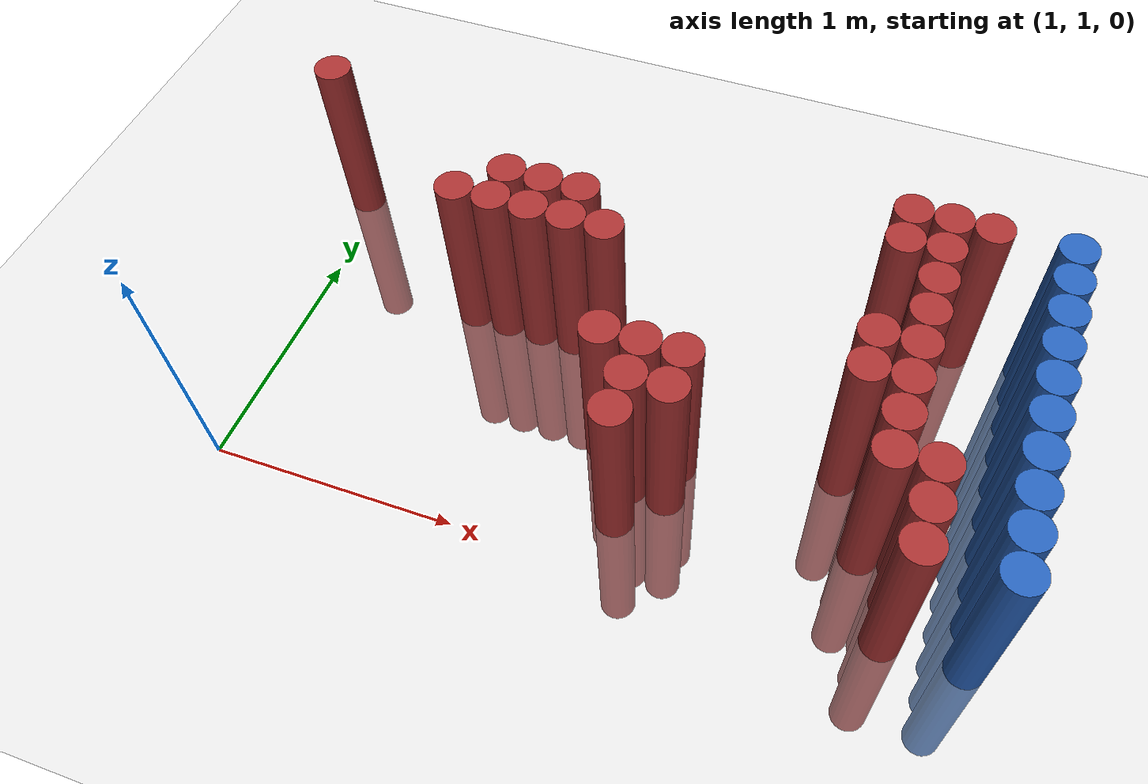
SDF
<sdf version="1.6">
 <world name="default">
  <model name="ground_plane">
   <static>1</static>
   <link name="link">
    <collision name="collision">
     <geometry><plane><normal>0 0 1</normal><size>100 100</size></plane></geometry>
     <surface><friction><ode><mu>100</mu><mu2>50</mu2></ode></friction></surface>
    </collision>
    <visual name="visual">
     <cast_shadows>0</cast_shadows>
     <geometry><plane><normal>0 0 1</normal><size>100 100</size></plane></geometry>
     <material>
      <script><uri>file://media/materials/scripts/gazebo.material</uri><name>Gazebo/Grey</name></script>
     </material>
    </visual>
   </link>
  </model>
  <model name="unit_cylinder_130">
   <static>1</static>
   <pose>3.925000 1.225000 0.000000 0.000000 0.000000 0.000000</pose>
   <link name="link">
    <inertial>
     <mass>1</mass>
     <inertia><ixx>0.145833</ixx><ixy>0</ixy><ixz>0</ixz><iyy>0.145833</iyy><iyz>0</iyz><izz>0.125</izz></inertia>
    </inertial>
    <collision name="collision">
     <geometry><cylinder><radius>0.075000</radius><length>1.5</length></cylinder></geometry>
    </collision>
    <visual name="visual">
     <geometry><cylinder><radius>0.075000</radius><length>1.5</length></cylinder></geometry>
     <material>
      <ambient>0.152000 0.379000 0.720000 1</ambient>
      <diffuse>0.152000 0.379000 0.720000 1</diffuse>
     </material>
     <material>
      <script><name>Gazebo/Grey</name><uri>file://media/materials/scripts/gazebo.material</uri></script>
     </material>
    </visual>
   </link>
  </model>
  <model name="unit_cylinder_132">
   <static>1</static>
   <pose>3.925000 1.375000 0.000000 0.000000 0.000000 0.000000</pose>
   <link name="link">
    <inertial>
     <mass>1</mass>
     <inertia><ixx>0.145833</ixx><ixy>0</ixy><ixz>0</ixz><iyy>0.145833</iyy><iyz>0</iyz><izz>0.125</izz></inertia>
    </inertial>
    <collision name="collision">
     <geometry><cylinder><radius>0.075000</radius><length>1.5</length></cylinder></geometry>
    </collision>
    <visual name="visual">
     <geometry><cylinder><radius>0.075000</radius><length>1.5</length></cylinder></geometry>
     <material>
      <ambient>0.152000 0.379000 0.720000 1</ambient>
      <diffuse>0.152000 0.379000 0.720000 1</diffuse>
     </material>
     <material>
      <script><name>Gazebo/Grey</name><uri>file://media/materials/scripts/gazebo.material</uri></script>
     </material>
    </visual>
   </link>
  </model>
  <model name="unit_cylinder_134">
   <static>1</static>
   <pose>3.925000 1.525000 0.000000 0.000000 0.000000 0.000000</pose>
   <link name="link">
    <inertial>
     <mass>1</mass>
     <inertia><ixx>0.145833</ixx><ixy>0</ixy><ixz>0</ixz><iyy>0.145833</iyy><iyz>0</iyz><izz>0.125</izz></inertia>
    </inertial>
    <collision name="collision">
     <geometry><cylinder><radius>0.075000</radius><length>1.5</length></cylinder></geometry>
    </collision>
    <visual name="visual">
     <geometry><cylinder><radius>0.075000</radius><length>1.5</length></cylinder></geometry>
     <material>
      <ambient>0.152000 0.379000 0.720000 1</ambient>
      <diffuse>0.152000 0.379000 0.720000 1</diffuse>
     </material>
     <material>
      <script><name>Gazebo/Grey</name><uri>file://media/materials/scripts/gazebo.material</uri></script>
     </material>
    </visual>
   </link>
  </model>
  <model name="unit_cylinder_136">
   <static>1</static>
   <pose>3.925000 1.675000 0.000000 0.000000 0.000000 0.000000</pose>
   <link name="link">
    <inertial>
     <mass>1</mass>
     <inertia><ixx>0.145833</ixx><ixy>0</ixy><ixz>0</ixz><iyy>0.145833</iyy><iyz>0</iyz><izz>0.125</izz></inertia>
    </inertial>
    <collision name="collision">
     <geometry><cylinder><radius>0.075000</radius><length>1.5</length></cylinder></geometry>
    </collision>
    <visual name="visual">
     <geometry><cylinder><radius>0.075000</radius><length>1.5</length></cylinder></geometry>
     <material>
      <ambient>0.152000 0.379000 0.720000 1</ambient>
      <diffuse>0.152000 0.379000 0.720000 1</diffuse>
     </material>
     <material>
      <script><name>Gazebo/Grey</name><uri>file://media/materials/scripts/gazebo.material</uri></script>
     </material>
    </visual>
   </link>
  </model>
  <model name="unit_cylinder_138">
   <static>1</static>
   <pose>3.925000 1.825000 0.000000 0.000000 0.000000 0.000000</pose>
   <link name="link">
    <inertial>
     <mass>1</mass>
     <inertia><ixx>0.145833</ixx><ixy>0</ixy><ixz>0</ixz><iyy>0.145833</iyy><iyz>0</iyz><izz>0.125</izz></inertia>
    </inertial>
    <collision name="collision">
     <geometry><cylinder><radius>0.075000</radius><length>1.5</length></cylinder></geometry>
    </collision>
    <visual name="visual">
     <geometry><cylinder><radius>0.075000</radius><length>1.5</length></cylinder></geometry>
     <material>
      <ambient>0.152000 0.379000 0.720000 1</ambient>
      <diffuse>0.152000 0.379000 0.720000 1</diffuse>
     </material>
     <material>
      <script><name>Gazebo/Grey</name><uri>file://media/materials/scripts/gazebo.material</uri></script>
     </material>
    </visual>
   </link>
  </model>
  <model name="unit_cylinder_140">
   <static>1</static>
   <pose>3.925000 1.975000 0.000000 0.000000 0.000000 0.000000</pose>
   <link name="link">
    <inertial>
     <mass>1</mass>
     <inertia><ixx>0.145833</ixx><ixy>0</ixy><ixz>0</ixz><iyy>0.145833</iyy><iyz>0</iyz><izz>0.125</izz></inertia>
    </inertial>
    <collision name="collision">
     <geometry><cylinder><radius>0.075000</radius><length>1.5</length></cylinder></geometry>
    </collision>
    <visual name="visual">
     <geometry><cylinder><radius>0.075000</radius><length>1.5</length></cylinder></geometry>
     <material>
      <ambient>0.152000 0.379000 0.720000 1</ambient>
      <diffuse>0.152000 0.379000 0.720000 1</diffuse>
     </material>
     <material>
      <script><name>Gazebo/Grey</name><uri>file://media/materials/scripts/gazebo.material</uri></script>
     </material>
    </visual>
   </link>
  </model>
  <model name="unit_cylinder_142">
   <static>1</static>
   <pose>3.925000 2.125000 0.000000 0.000000 0.000000 0.000000</pose>
   <link name="link">
    <inertial>
     <mass>1</mass>
     <inertia><ixx>0.145833</ixx><ixy>0</ixy><ixz>0</ixz><iyy>0.145833</iyy><iyz>0</iyz><izz>0.125</izz></inertia>
    </inertial>
    <collision name="collision">
     <geometry><cylinder><radius>0.075000</radius><length>1.5</length></cylinder></geometry>
    </collision>
    <visual name="visual">
     <geometry><cylinder><radius>0.075000</radius><length>1.5</length></cylinder></geometry>
     <material>
      <ambient>0.152000 0.379000 0.720000 1</ambient>
      <diffuse>0.152000 0.379000 0.720000 1</diffuse>
     </material>
     <material>
      <script><name>Gazebo/Grey</name><uri>file://media/materials/scripts/gazebo.material</uri></script>
     </material>
    </visual>
   </link>
  </model>
  <model name="unit_cylinder_144">
   <static>1</static>
   <pose>3.925000 2.275000 0.000000 0.000000 0.000000 0.000000</pose>
   <link name="link">
    <inertial>
     <mass>1</mass>
     <inertia><ixx>0.145833</ixx><ixy>0</ixy><ixz>0</ixz><iyy>0.145833</iyy><iyz>0</iyz><izz>0.125</izz></inertia>
    </inertial>
    <collision name="collision">
     <geometry><cylinder><radius>0.075000</radius><length>1.5</length></cylinder></geometry>
    </collision>
    <visual name="visual">
     <geometry><cylinder><radius>0.075000</radius><length>1.5</length></cylinder></geometry>
     <material>
      <ambient>0.152000 0.379000 0.720000 1</ambient>
      <diffuse>0.152000 0.379000 0.720000 1</diffuse>
     </material>
     <material>
      <script><name>Gazebo/Grey</name><uri>file://media/materials/scripts/gazebo.material</uri></script>
     </material>
    </visual>
   </link>
  </model>
  <model name="unit_cylinder_146">
   <static>1</static>
   <pose>3.925000 2.425000 0.000000 0.000000 0.000000 0.000000</pose>
   <link name="link">
    <inertial>
     <mass>1</mass>
     <inertia><ixx>0.145833</ixx><ixy>0</ixy><ixz>0</ixz><iyy>0.145833</iyy><iyz>0</iyz><izz>0.125</izz></inertia>
    </inertial>
    <collision name="collision">
     <geometry><cylinder><radius>0.075000</radius><length>1.5</length></cylinder></geometry>
    </collision>
    <visual name="visual">
     <geometry><cylinder><radius>0.075000</radius><length>1.5</length></cylinder></geometry>
     <material>
      <ambient>0.152000 0.379000 0.720000 1</ambient>
      <diffuse>0.152000 0.379000 0.720000 1</diffuse>
     </material>
     <material>
      <script><name>Gazebo/Grey</name><uri>file://media/materials/scripts/gazebo.material</uri></script>
     </material>
    </visual>
   </link>
  </model>
  <model name="unit_cylinder_385">
   <static>1</static>
   <pose>0.925000 2.425000 0.000000 0.000000 0.000000 0.000000</pose>
   <link name="link">
    <inertial>
     <mass>1</mass>
     <inertia><ixx>0.145833</ixx><ixy>0</ixy><ixz>0</ixz><iyy>0.145833</iyy><iyz>0</iyz><izz>0.125</izz></inertia>
    </inertial>
    <collision name="collision">
     <geometry><cylinder><radius>0.075000</radius><length>1.5</length></cylinder></geometry>
    </collision>
    <visual name="visual">
     <geometry><cylinder><radius>0.075000</radius><length>1.5</length></cylinder></geometry>
     <material>
      <ambient>0.648000 0.192000 0.192000 1</ambient>
      <diffuse>0.648000 0.192000 0.192000 1</diffuse>
     </material>
     <material>
      <script><name>Gazebo/Grey</name><uri>file://media/materials/scripts/gazebo.material</uri></script>
     </material>
    </visual>
   </link>
  </model>
  <model name="unit_cylinder_400">
   <static>1</static>
   <pose>1.675000 1.975000 0.000000 0.000000 0.000000 0.000000</pose>
   <link name="link">
    <inertial>
     <mass>1</mass>
     <inertia><ixx>0.145833</ixx><ixy>0</ixy><ixz>0</ixz><iyy>0.145833</iyy><iyz>0</iyz><izz>0.125</izz></inertia>
    </inertial>
    <collision name="collision">
     <geometry><cylinder><radius>0.075000</radius><length>1.5</length></cylinder></geometry>
    </collision>
    <visual name="visual">
     <geometry><cylinder><radius>0.075000</radius><length>1.5</length></cylinder></geometry>
     <material>
      <ambient>0.648000 0.192000 0.192000 1</ambient>
      <diffuse>0.648000 0.192000 0.192000 1</diffuse>
     </material>
     <material>
      <script><name>Gazebo/Grey</name><uri>file://media/materials/scripts/gazebo.material</uri></script>
     </material>
    </visual>
   </link>
  </model>
  <model name="unit_cylinder_406">
   <static>1</static>
   <pose>1.825000 1.975000 0.000000 0.000000 0.000000 0.000000</pose>
   <link name="link">
    <inertial>
     <mass>1</mass>
     <inertia><ixx>0.145833</ixx><ixy>0</ixy><ixz>0</ixz><iyy>0.145833</iyy><iyz>0</iyz><izz>0.125</izz></inertia>
    </inertial>
    <collision name="collision">
     <geometry><cylinder><radius>0.075000</radius><length>1.5</length></cylinder></geometry>
    </collision>
    <visual name="visual">
     <geometry><cylinder><radius>0.075000</radius><length>1.5</length></cylinder></geometry>
     <material>
      <ambient>0.648000 0.192000 0.192000 1</ambient>
      <diffuse>0.648000 0.192000 0.192000 1</diffuse>
     </material>
     <material>
      <script><name>Gazebo/Grey</name><uri>file://media/materials/scripts/gazebo.material</uri></script>
     </material>
    </visual>
   </link>
  </model>
  <model name="unit_cylinder_407">
   <static>1</static>
   <pose>1.825000 2.125000 0.000000 0.000000 0.000000 0.000000</pose>
   <link name="link">
    <inertial>
     <mass>1</mass>
     <inertia><ixx>0.145833</ixx><ixy>0</ixy><ixz>0</ixz><iyy>0.145833</iyy><iyz>0</iyz><izz>0.125</izz></inertia>
    </inertial>
    <collision name="collision">
     <geometry><cylinder><radius>0.075000</radius><length>1.5</length></cylinder></geometry>
    </collision>
    <visual name="visual">
     <geometry><cylinder><radius>0.075000</radius><length>1.5</length></cylinder></geometry>
     <material>
      <ambient>0.648000 0.192000 0.192000 1</ambient>
      <diffuse>0.648000 0.192000 0.192000 1</diffuse>
     </material>
     <material>
      <script><name>Gazebo/Grey</name><uri>file://media/materials/scripts/gazebo.material</uri></script>
     </material>
    </visual>
   </link>
  </model>
  <model name="unit_cylinder_413">
   <static>1</static>
   <pose>1.975000 1.975000 0.000000 0.000000 0.000000 0.000000</pose>
   <link name="link">
    <inertial>
     <mass>1</mass>
     <inertia><ixx>0.145833</ixx><ixy>0</ixy><ixz>0</ixz><iyy>0.145833</iyy><iyz>0</iyz><izz>0.125</izz></inertia>
    </inertial>
    <collision name="collision">
     <geometry><cylinder><radius>0.075000</radius><length>1.5</length></cylinder></geometry>
    </collision>
    <visual name="visual">
     <geometry><cylinder><radius>0.075000</radius><length>1.5</length></cylinder></geometry>
     <material>
      <ambient>0.648000 0.192000 0.192000 1</ambient>
      <diffuse>0.648000 0.192000 0.192000 1</diffuse>
     </material>
     <material>
      <script><name>Gazebo/Grey</name><uri>file://media/materials/scripts/gazebo.material</uri></script>
     </material>
    </visual>
   </link>
  </model>
  <model name="unit_cylinder_414">
   <static>1</static>
   <pose>1.975000 2.125000 0.000000 0.000000 0.000000 0.000000</pose>
   <link name="link">
    <inertial>
     <mass>1</mass>
     <inertia><ixx>0.145833</ixx><ixy>0</ixy><ixz>0</ixz><iyy>0.145833</iyy><iyz>0</iyz><izz>0.125</izz></inertia>
    </inertial>
    <collision name="collision">
     <geometry><cylinder><radius>0.075000</radius><length>1.5</length></cylinder></geometry>
    </collision>
    <visual name="visual">
     <geometry><cylinder><radius>0.075000</radius><length>1.5</length></cylinder></geometry>
     <material>
      <ambient>0.648000 0.192000 0.192000 1</ambient>
      <diffuse>0.648000 0.192000 0.192000 1</diffuse>
     </material>
     <material>
      <script><name>Gazebo/Grey</name><uri>file://media/materials/scripts/gazebo.material</uri></script>
     </material>
    </visual>
   </link>
  </model>
  <model name="unit_cylinder_421">
   <static>1</static>
   <pose>2.125000 1.975000 0.000000 0.000000 0.000000 0.000000</pose>
   <link name="link">
    <inertial>
     <mass>1</mass>
     <inertia><ixx>0.145833</ixx><ixy>0</ixy><ixz>0</ixz><iyy>0.145833</iyy><iyz>0</iyz><izz>0.125</izz></inertia>
    </inertial>
    <collision name="collision">
     <geometry><cylinder><radius>0.075000</radius><length>1.5</length></cylinder></geometry>
    </collision>
    <visual name="visual">
     <geometry><cylinder><radius>0.075000</radius><length>1.5</length></cylinder></geometry>
     <material>
      <ambient>0.648000 0.192000 0.192000 1</ambient>
      <diffuse>0.648000 0.192000 0.192000 1</diffuse>
     </material>
     <material>
      <script><name>Gazebo/Grey</name><uri>file://media/materials/scripts/gazebo.material</uri></script>
     </material>
    </visual>
   </link>
  </model>
  <model name="unit_cylinder_422">
   <static>1</static>
   <pose>2.125000 2.125000 0.000000 0.000000 0.000000 0.000000</pose>
   <link name="link">
    <inertial>
     <mass>1</mass>
     <inertia><ixx>0.145833</ixx><ixy>0</ixy><ixz>0</ixz><iyy>0.145833</iyy><iyz>0</iyz><izz>0.125</izz></inertia>
    </inertial>
    <collision name="collision">
     <geometry><cylinder><radius>0.075000</radius><length>1.5</length></cylinder></geometry>
    </collision>
    <visual name="visual">
     <geometry><cylinder><radius>0.075000</radius><length>1.5</length></cylinder></geometry>
     <material>
      <ambient>0.648000 0.192000 0.192000 1</ambient>
      <diffuse>0.648000 0.192000 0.192000 1</diffuse>
     </material>
     <material>
      <script><name>Gazebo/Grey</name><uri>file://media/materials/scripts/gazebo.material</uri></script>
     </material>
    </visual>
   </link>
  </model>
  <model name="unit_cylinder_429">
   <static>1</static>
   <pose>2.275000 1.975000 0.000000 0.000000 0.000000 0.000000</pose>
   <link name="link">
    <inertial>
     <mass>1</mass>
     <inertia><ixx>0.145833</ixx><ixy>0</ixy><ixz>0</ixz><iyy>0.145833</iyy><iyz>0</iyz><izz>0.125</izz></inertia>
    </inertial>
    <collision name="collision">
     <geometry><cylinder><radius>0.075000</radius><length>1.5</length></cylinder></geometry>
    </collision>
    <visual name="visual">
     <geometry><cylinder><radius>0.075000</radius><length>1.5</length></cylinder></geometry>
     <material>
      <ambient>0.648000 0.192000 0.192000 1</ambient>
      <diffuse>0.648000 0.192000 0.192000 1</diffuse>
     </material>
     <material>
      <script><name>Gazebo/Grey</name><uri>file://media/materials/scripts/gazebo.material</uri></script>
     </material>
    </visual>
   </link>
  </model>
  <model name="unit_cylinder_437">
   <static>1</static>
   <pose>2.425000 1.525000 0.000000 0.000000 0.000000 0.000000</pose>
   <link name="link">
    <inertial>
     <mass>1</mass>
     <inertia><ixx>0.145833</ixx><ixy>0</ixy><ixz>0</ixz><iyy>0.145833</iyy><iyz>0</iyz><izz>0.125</izz></inertia>
    </inertial>
    <collision name="collision">
     <geometry><cylinder><radius>0.075000</radius><length>1.5</length></cylinder></geometry>
    </collision>
    <visual name="visual">
     <geometry><cylinder><radius>0.075000</radius><length>1.5</length></cylinder></geometry>
     <material>
      <ambient>0.648000 0.192000 0.192000 1</ambient>
      <diffuse>0.648000 0.192000 0.192000 1</diffuse>
     </material>
     <material>
      <script><name>Gazebo/Grey</name><uri>file://media/materials/scripts/gazebo.material</uri></script>
     </material>
    </visual>
   </link>
  </model>
  <model name="unit_cylinder_441">
   <static>1</static>
   <pose>2.575000 1.225000 0.000000 0.000000 0.000000 0.000000</pose>
   <link name="link">
    <inertial>
     <mass>1</mass>
     <inertia><ixx>0.145833</ixx><ixy>0</ixy><ixz>0</ixz><iyy>0.145833</iyy><iyz>0</iyz><izz>0.125</izz></inertia>
    </inertial>
    <collision name="collision">
     <geometry><cylinder><radius>0.075000</radius><length>1.5</length></cylinder></geometry>
    </collision>
    <visual name="visual">
     <geometry><cylinder><radius>0.075000</radius><length>1.5</length></cylinder></geometry>
     <material>
      <ambient>0.648000 0.192000 0.192000 1</ambient>
      <diffuse>0.648000 0.192000 0.192000 1</diffuse>
     </material>
     <material>
      <script><name>Gazebo/Grey</name><uri>file://media/materials/scripts/gazebo.material</uri></script>
     </material>
    </visual>
   </link>
  </model>
  <model name="unit_cylinder_442">
   <static>1</static>
   <pose>2.575000 1.375000 0.000000 0.000000 0.000000 0.000000</pose>
   <link name="link">
    <inertial>
     <mass>1</mass>
     <inertia><ixx>0.145833</ixx><ixy>0</ixy><ixz>0</ixz><iyy>0.145833</iyy><iyz>0</iyz><izz>0.125</izz></inertia>
    </inertial>
    <collision name="collision">
     <geometry><cylinder><radius>0.075000</radius><length>1.5</length></cylinder></geometry>
    </collision>
    <visual name="visual">
     <geometry><cylinder><radius>0.075000</radius><length>1.5</length></cylinder></geometry>
     <material>
      <ambient>0.648000 0.192000 0.192000 1</ambient>
      <diffuse>0.648000 0.192000 0.192000 1</diffuse>
     </material>
     <material>
      <script><name>Gazebo/Grey</name><uri>file://media/materials/scripts/gazebo.material</uri></script>
     </material>
    </visual>
   </link>
  </model>
  <model name="unit_cylinder_443">
   <static>1</static>
   <pose>2.575000 1.525000 0.000000 0.000000 0.000000 0.000000</pose>
   <link name="link">
    <inertial>
     <mass>1</mass>
     <inertia><ixx>0.145833</ixx><ixy>0</ixy><ixz>0</ixz><iyy>0.145833</iyy><iyz>0</iyz><izz>0.125</izz></inertia>
    </inertial>
    <collision name="collision">
     <geometry><cylinder><radius>0.075000</radius><length>1.5</length></cylinder></geometry>
    </collision>
    <visual name="visual">
     <geometry><cylinder><radius>0.075000</radius><length>1.5</length></cylinder></geometry>
     <material>
      <ambient>0.648000 0.192000 0.192000 1</ambient>
      <diffuse>0.648000 0.192000 0.192000 1</diffuse>
     </material>
     <material>
      <script><name>Gazebo/Grey</name><uri>file://media/materials/scripts/gazebo.material</uri></script>
     </material>
    </visual>
   </link>
  </model>
  <model name="unit_cylinder_446">
   <static>1</static>
   <pose>2.725000 1.375000 0.000000 0.000000 0.000000 0.000000</pose>
   <link name="link">
    <inertial>
     <mass>1</mass>
     <inertia><ixx>0.145833</ixx><ixy>0</ixy><ixz>0</ixz><iyy>0.145833</iyy><iyz>0</iyz><izz>0.125</izz></inertia>
    </inertial>
    <collision name="collision">
     <geometry><cylinder><radius>0.075000</radius><length>1.5</length></cylinder></geometry>
    </collision>
    <visual name="visual">
     <geometry><cylinder><radius>0.075000</radius><length>1.5</length></cylinder></geometry>
     <material>
      <ambient>0.648000 0.192000 0.192000 1</ambient>
      <diffuse>0.648000 0.192000 0.192000 1</diffuse>
     </material>
     <material>
      <script><name>Gazebo/Grey</name><uri>file://media/materials/scripts/gazebo.material</uri></script>
     </material>
    </visual>
   </link>
  </model>
  <model name="unit_cylinder_447">
   <static>1</static>
   <pose>2.725000 1.525000 0.000000 0.000000 0.000000 0.000000</pose>
   <link name="link">
    <inertial>
     <mass>1</mass>
     <inertia><ixx>0.145833</ixx><ixy>0</ixy><ixz>0</ixz><iyy>0.145833</iyy><iyz>0</iyz><izz>0.125</izz></inertia>
    </inertial>
    <collision name="collision">
     <geometry><cylinder><radius>0.075000</radius><length>1.5</length></cylinder></geometry>
    </collision>
    <visual name="visual">
     <geometry><cylinder><radius>0.075000</radius><length>1.5</length></cylinder></geometry>
     <material>
      <ambient>0.648000 0.192000 0.192000 1</ambient>
      <diffuse>0.648000 0.192000 0.192000 1</diffuse>
     </material>
     <material>
      <script><name>Gazebo/Grey</name><uri>file://media/materials/scripts/gazebo.material</uri></script>
     </material>
    </visual>
   </link>
  </model>
  <model name="unit_cylinder_467">
   <static>1</static>
   <pose>3.325000 1.675000 0.000000 0.000000 0.000000 0.000000</pose>
   <link name="link">
    <inertial>
     <mass>1</mass>
     <inertia><ixx>0.145833</ixx><ixy>0</ixy><ixz>0</ixz><iyy>0.145833</iyy><iyz>0</iyz><izz>0.125</izz></inertia>
    </inertial>
    <collision name="collision">
     <geometry><cylinder><radius>0.075000</radius><length>1.5</length></cylinder></geometry>
    </collision>
    <visual name="visual">
     <geometry><cylinder><radius>0.075000</radius><length>1.5</length></cylinder></geometry>
     <material>
      <ambient>0.648000 0.192000 0.192000 1</ambient>
      <diffuse>0.648000 0.192000 0.192000 1</diffuse>
     </material>
     <material>
      <script><name>Gazebo/Grey</name><uri>file://media/materials/scripts/gazebo.material</uri></script>
     </material>
    </visual>
   </link>
  </model>
  <model name="unit_cylinder_468">
   <static>1</static>
   <pose>3.325000 1.825000 0.000000 0.000000 0.000000 0.000000</pose>
   <link name="link">
    <inertial>
     <mass>1</mass>
     <inertia><ixx>0.145833</ixx><ixy>0</ixy><ixz>0</ixz><iyy>0.145833</iyy><iyz>0</iyz><izz>0.125</izz></inertia>
    </inertial>
    <collision name="collision">
     <geometry><cylinder><radius>0.075000</radius><length>1.5</length></cylinder></geometry>
    </collision>
    <visual name="visual">
     <geometry><cylinder><radius>0.075000</radius><length>1.5</length></cylinder></geometry>
     <material>
      <ambient>0.648000 0.192000 0.192000 1</ambient>
      <diffuse>0.648000 0.192000 0.192000 1</diffuse>
     </material>
     <material>
      <script><name>Gazebo/Grey</name><uri>file://media/materials/scripts/gazebo.material</uri></script>
     </material>
    </visual>
   </link>
  </model>
  <model name="unit_cylinder_469">
   <static>1</static>
   <pose>3.325000 2.275000 0.000000 0.000000 0.000000 0.000000</pose>
   <link name="link">
    <inertial>
     <mass>1</mass>
     <inertia><ixx>0.145833</ixx><ixy>0</ixy><ixz>0</ixz><iyy>0.145833</iyy><iyz>0</iyz><izz>0.125</izz></inertia>
    </inertial>
    <collision name="collision">
     <geometry><cylinder><radius>0.075000</radius><length>1.5</length></cylinder></geometry>
    </collision>
    <visual name="visual">
     <geometry><cylinder><radius>0.075000</radius><length>1.5</length></cylinder></geometry>
     <material>
      <ambient>0.648000 0.192000 0.192000 1</ambient>
      <diffuse>0.648000 0.192000 0.192000 1</diffuse>
     </material>
     <material>
      <script><name>Gazebo/Grey</name><uri>file://media/materials/scripts/gazebo.material</uri></script>
     </material>
    </visual>
   </link>
  </model>
  <model name="unit_cylinder_470">
   <static>1</static>
   <pose>3.325000 2.425000 0.000000 0.000000 0.000000 0.000000</pose>
   <link name="link">
    <inertial>
     <mass>1</mass>
     <inertia><ixx>0.145833</ixx><ixy>0</ixy><ixz>0</ixz><iyy>0.145833</iyy><iyz>0</iyz><izz>0.125</izz></inertia>
    </inertial>
    <collision name="collision">
     <geometry><cylinder><radius>0.075000</radius><length>1.5</length></cylinder></geometry>
    </collision>
    <visual name="visual">
     <geometry><cylinder><radius>0.075000</radius><length>1.5</length></cylinder></geometry>
     <material>
      <ambient>0.648000 0.192000 0.192000 1</ambient>
      <diffuse>0.648000 0.192000 0.192000 1</diffuse>
     </material>
     <material>
      <script><name>Gazebo/Grey</name><uri>file://media/materials/scripts/gazebo.material</uri></script>
     </material>
    </visual>
   </link>
  </model>
  <model name="unit_cylinder_475">
   <static>1</static>
   <pose>3.475000 1.375000 0.000000 0.000000 0.000000 0.000000</pose>
   <link name="link">
    <inertial>
     <mass>1</mass>
     <inertia><ixx>0.145833</ixx><ixy>0</ixy><ixz>0</ixz><iyy>0.145833</iyy><iyz>0</iyz><izz>0.125</izz></inertia>
    </inertial>
    <collision name="collision">
     <geometry><cylinder><radius>0.075000</radius><length>1.5</length></cylinder></geometry>
    </collision>
    <visual name="visual">
     <geometry><cylinder><radius>0.075000</radius><length>1.5</length></cylinder></geometry>
     <material>
      <ambient>0.648000 0.192000 0.192000 1</ambient>
      <diffuse>0.648000 0.192000 0.192000 1</diffuse>
     </material>
     <material>
      <script><name>Gazebo/Grey</name><uri>file://media/materials/scripts/gazebo.material</uri></script>
     </material>
    </visual>
   </link>
  </model>
  <model name="unit_cylinder_476">
   <static>1</static>
   <pose>3.475000 1.525000 0.000000 0.000000 0.000000 0.000000</pose>
   <link name="link">
    <inertial>
     <mass>1</mass>
     <inertia><ixx>0.145833</ixx><ixy>0</ixy><ixz>0</ixz><iyy>0.145833</iyy><iyz>0</iyz><izz>0.125</izz></inertia>
    </inertial>
    <collision name="collision">
     <geometry><cylinder><radius>0.075000</radius><length>1.5</length></cylinder></geometry>
    </collision>
    <visual name="visual">
     <geometry><cylinder><radius>0.075000</radius><length>1.5</length></cylinder></geometry>
     <material>
      <ambient>0.648000 0.192000 0.192000 1</ambient>
      <diffuse>0.648000 0.192000 0.192000 1</diffuse>
     </material>
     <material>
      <script><name>Gazebo/Grey</name><uri>file://media/materials/scripts/gazebo.material</uri></script>
     </material>
    </visual>
   </link>
  </model>
  <model name="unit_cylinder_477">
   <static>1</static>
   <pose>3.475000 1.675000 0.000000 0.000000 0.000000 0.000000</pose>
   <link name="link">
    <inertial>
     <mass>1</mass>
     <inertia><ixx>0.145833</ixx><ixy>0</ixy><ixz>0</ixz><iyy>0.145833</iyy><iyz>0</iyz><izz>0.125</izz></inertia>
    </inertial>
    <collision name="collision">
     <geometry><cylinder><radius>0.075000</radius><length>1.5</length></cylinder></geometry>
    </collision>
    <visual name="visual">
     <geometry><cylinder><radius>0.075000</radius><length>1.5</length></cylinder></geometry>
     <material>
      <ambient>0.648000 0.192000 0.192000 1</ambient>
      <diffuse>0.648000 0.192000 0.192000 1</diffuse>
     </material>
     <material>
      <script><name>Gazebo/Grey</name><uri>file://media/materials/scripts/gazebo.material</uri></script>
     </material>
    </visual>
   </link>
  </model>
  <model name="unit_cylinder_478">
   <static>1</static>
   <pose>3.475000 1.825000 0.000000 0.000000 0.000000 0.000000</pose>
   <link name="link">
    <inertial>
     <mass>1</mass>
     <inertia><ixx>0.145833</ixx><ixy>0</ixy><ixz>0</ixz><iyy>0.145833</iyy><iyz>0</iyz><izz>0.125</izz></inertia>
    </inertial>
    <collision name="collision">
     <geometry><cylinder><radius>0.075000</radius><length>1.5</length></cylinder></geometry>
    </collision>
    <visual name="visual">
     <geometry><cylinder><radius>0.075000</radius><length>1.5</length></cylinder></geometry>
     <material>
      <ambient>0.648000 0.192000 0.192000 1</ambient>
      <diffuse>0.648000 0.192000 0.192000 1</diffuse>
     </material>
     <material>
      <script><name>Gazebo/Grey</name><uri>file://media/materials/scripts/gazebo.material</uri></script>
     </material>
    </visual>
   </link>
  </model>
  <model name="unit_cylinder_479">
   <static>1</static>
   <pose>3.475000 1.975000 0.000000 0.000000 0.000000 0.000000</pose>
   <link name="link">
    <inertial>
     <mass>1</mass>
     <inertia><ixx>0.145833</ixx><ixy>0</ixy><ixz>0</ixz><iyy>0.145833</iyy><iyz>0</iyz><izz>0.125</izz></inertia>
    </inertial>
    <collision name="collision">
     <geometry><cylinder><radius>0.075000</radius><length>1.5</length></cylinder></geometry>
    </collision>
    <visual name="visual">
     <geometry><cylinder><radius>0.075000</radius><length>1.5</length></cylinder></geometry>
     <material>
      <ambient>0.648000 0.192000 0.192000 1</ambient>
      <diffuse>0.648000 0.192000 0.192000 1</diffuse>
     </material>
     <material>
      <script><name>Gazebo/Grey</name><uri>file://media/materials/scripts/gazebo.material</uri></script>
     </material>
    </visual>
   </link>
  </model>
  <model name="unit_cylinder_480">
   <static>1</static>
   <pose>3.475000 2.125000 0.000000 0.000000 0.000000 0.000000</pose>
   <link name="link">
    <inertial>
     <mass>1</mass>
     <inertia><ixx>0.145833</ixx><ixy>0</ixy><ixz>0</ixz><iyy>0.145833</iyy><iyz>0</iyz><izz>0.125</izz></inertia>
    </inertial>
    <collision name="collision">
     <geometry><cylinder><radius>0.075000</radius><length>1.5</length></cylinder></geometry>
    </collision>
    <visual name="visual">
     <geometry><cylinder><radius>0.075000</radius><length>1.5</length></cylinder></geometry>
     <material>
      <ambient>0.648000 0.192000 0.192000 1</ambient>
      <diffuse>0.648000 0.192000 0.192000 1</diffuse>
     </material>
     <material>
      <script><name>Gazebo/Grey</name><uri>file://media/materials/scripts/gazebo.material</uri></script>
     </material>
    </visual>
   </link>
  </model>
  <model name="unit_cylinder_481">
   <static>1</static>
   <pose>3.475000 2.275000 0.000000 0.000000 0.000000 0.000000</pose>
   <link name="link">
    <inertial>
     <mass>1</mass>
     <inertia><ixx>0.145833</ixx><ixy>0</ixy><ixz>0</ixz><iyy>0.145833</iyy><iyz>0</iyz><izz>0.125</izz></inertia>
    </inertial>
    <collision name="collision">
     <geometry><cylinder><radius>0.075000</radius><length>1.5</length></cylinder></geometry>
    </collision>
    <visual name="visual">
     <geometry><cylinder><radius>0.075000</radius><length>1.5</length></cylinder></geometry>
     <material>
      <ambient>0.648000 0.192000 0.192000 1</ambient>
      <diffuse>0.648000 0.192000 0.192000 1</diffuse>
     </material>
     <material>
      <script><name>Gazebo/Grey</name><uri>file://media/materials/scripts/gazebo.material</uri></script>
     </material>
    </visual>
   </link>
  </model>
  <model name="unit_cylinder_482">
   <static>1</static>
   <pose>3.475000 2.425000 0.000000 0.000000 0.000000 0.000000</pose>
   <link name="link">
    <inertial>
     <mass>1</mass>
     <inertia><ixx>0.145833</ixx><ixy>0</ixy><ixz>0</ixz><iyy>0.145833</iyy><iyz>0</iyz><izz>0.125</izz></inertia>
    </inertial>
    <collision name="collision">
     <geometry><cylinder><radius>0.075000</radius><length>1.5</length></cylinder></geometry>
    </collision>
    <visual name="visual">
     <geometry><cylinder><radius>0.075000</radius><length>1.5</length></cylinder></geometry>
     <material>
      <ambient>0.648000 0.192000 0.192000 1</ambient>
      <diffuse>0.648000 0.192000 0.192000 1</diffuse>
     </material>
     <material>
      <script><name>Gazebo/Grey</name><uri>file://media/materials/scripts/gazebo.material</uri></script>
     </material>
    </visual>
   </link>
  </model>
  <model name="unit_cylinder_487">
   <static>1</static>
   <pose>3.625000 1.075000 0.000000 0.000000 0.000000 0.000000</pose>
   <link name="link">
    <inertial>
     <mass>1</mass>
     <inertia><ixx>0.145833</ixx><ixy>0</ixy><ixz>0</ixz><iyy>0.145833</iyy><iyz>0</iyz><izz>0.125</izz></inertia>
    </inertial>
    <collision name="collision">
     <geometry><cylinder><radius>0.075000</radius><length>1.5</length></cylinder></geometry>
    </collision>
    <visual name="visual">
     <geometry><cylinder><radius>0.075000</radius><length>1.5</length></cylinder></geometry>
     <material>
      <ambient>0.648000 0.192000 0.192000 1</ambient>
      <diffuse>0.648000 0.192000 0.192000 1</diffuse>
     </material>
     <material>
      <script><name>Gazebo/Grey</name><uri>file://media/materials/scripts/gazebo.material</uri></script>
     </material>
    </visual>
   </link>
  </model>
  <model name="unit_cylinder_488">
   <static>1</static>
   <pose>3.625000 1.225000 0.000000 0.000000 0.000000 0.000000</pose>
   <link name="link">
    <inertial>
     <mass>1</mass>
     <inertia><ixx>0.145833</ixx><ixy>0</ixy><ixz>0</ixz><iyy>0.145833</iyy><iyz>0</iyz><izz>0.125</izz></inertia>
    </inertial>
    <collision name="collision">
     <geometry><cylinder><radius>0.075000</radius><length>1.5</length></cylinder></geometry>
    </collision>
    <visual name="visual">
     <geometry><cylinder><radius>0.075000</radius><length>1.5</length></cylinder></geometry>
     <material>
      <ambient>0.648000 0.192000 0.192000 1</ambient>
      <diffuse>0.648000 0.192000 0.192000 1</diffuse>
     </material>
     <material>
      <script><name>Gazebo/Grey</name><uri>file://media/materials/scripts/gazebo.material</uri></script>
     </material>
    </visual>
   </link>
  </model>
  <model name="unit_cylinder_489">
   <static>1</static>
   <pose>3.625000 1.375000 0.000000 0.000000 0.000000 0.000000</pose>
   <link name="link">
    <inertial>
     <mass>1</mass>
     <inertia><ixx>0.145833</ixx><ixy>0</ixy><ixz>0</ixz><iyy>0.145833</iyy><iyz>0</iyz><izz>0.125</izz></inertia>
    </inertial>
    <collision name="collision">
     <geometry><cylinder><radius>0.075000</radius><length>1.5</length></cylinder></geometry>
    </collision>
    <visual name="visual">
     <geometry><cylinder><radius>0.075000</radius><length>1.5</length></cylinder></geometry>
     <material>
      <ambient>0.648000 0.192000 0.192000 1</ambient>
      <diffuse>0.648000 0.192000 0.192000 1</diffuse>
     </material>
     <material>
      <script><name>Gazebo/Grey</name><uri>file://media/materials/scripts/gazebo.material</uri></script>
     </material>
    </visual>
   </link>
  </model>
  <model name="unit_cylinder_490">
   <static>1</static>
   <pose>3.625000 2.425000 0.000000 0.000000 0.000000 0.000000</pose>
   <link name="link">
    <inertial>
     <mass>1</mass>
     <inertia><ixx>0.145833</ixx><ixy>0</ixy><ixz>0</ixz><iyy>0.145833</iyy><iyz>0</iyz><izz>0.125</izz></inertia>
    </inertial>
    <collision name="collision">
     <geometry><cylinder><radius>0.075000</radius><length>1.5</length></cylinder></geometry>
    </collision>
    <visual name="visual">
     <geometry><cylinder><radius>0.075000</radius><length>1.5</length></cylinder></geometry>
     <material>
      <ambient>0.648000 0.192000 0.192000 1</ambient>
      <diffuse>0.648000 0.192000 0.192000 1</diffuse>
     </material>
     <material>
      <script><name>Gazebo/Grey</name><uri>file://media/materials/scripts/gazebo.material</uri></script>
     </material>
    </visual>
   </link>
  </model>
  <model name="unit_cylinder_522">
   <static>1</static>
   <pose>3.925000 1.075000 0.000000 0.000000 0.000000 0.000000</pose>
   <link name="link">
    <inertial>
     <mass>1</mass>
     <inertia><ixx>0.145833</ixx><ixy>0</ixy><ixz>0</ixz><iyy>0.145833</iyy><iyz>0</iyz><izz>0.125</izz></inertia>
    </inertial>
    <collision name="collision">
     <geometry><cylinder><radius>0.075000</radius><length>1.5</length></cylinder></geometry>
    </collision>
    <visual name="visual">
     <geometry><cylinder><radius>0.075000</radius><length>1.5</length></cylinder></geometry>
     <material>
      <ambient>0.152000 0.379000 0.720000 1</ambient>
      <diffuse>0.152000 0.379000 0.720000 1</diffuse>
     </material>
     <material>
      <script><name>Gazebo/Grey</name><uri>file://media/materials/scripts/gazebo.material</uri></script>
     </material>
    </visual>
   </link>
  </model>
  <model name="unit_cylinder_523">
   <static>1</static>
   <pose>3.925000 1.225000 0.000000 0.000000 0.000000 0.000000</pose>
   <link name="link">
    <inertial>
     <mass>1</mass>
     <inertia><ixx>0.145833</ixx><ixy>0</ixy><ixz>0</ixz><iyy>0.145833</iyy><iyz>0</iyz><izz>0.125</izz></inertia>
    </inertial>
    <collision name="collision">
     <geometry><cylinder><radius>0.075000</radius><length>1.5</length></cylinder></geometry>
    </collision>
    <visual name="visual">
     <geometry><cylinder><radius>0.075000</radius><length>1.5</length></cylinder></geometry>
     <material>
      <ambient>0.152000 0.379000 0.720000 1</ambient>
      <diffuse>0.152000 0.379000 0.720000 1</diffuse>
     </material>
     <material>
      <script><name>Gazebo/Grey</name><uri>file://media/materials/scripts/gazebo.material</uri></script>
     </material>
    </visual>
   </link>
  </model>
  <model name="unit_cylinder_524">
   <static>1</static>
   <pose>3.925000 1.375000 0.000000 0.000000 0.000000 0.000000</pose>
   <link name="link">
    <inertial>
     <mass>1</mass>
     <inertia><ixx>0.145833</ixx><ixy>0</ixy><ixz>0</ixz><iyy>0.145833</iyy><iyz>0</iyz><izz>0.125</izz></inertia>
    </inertial>
    <collision name="collision">
     <geometry><cylinder><radius>0.075000</radius><length>1.5</length></cylinder></geometry>
    </collision>
    <visual name="visual">
     <geometry><cylinder><radius>0.075000</radius><length>1.5</length></cylinder></geometry>
     <material>
      <ambient>0.152000 0.379000 0.720000 1</ambient>
      <diffuse>0.152000 0.379000 0.720000 1</diffuse>
     </material>
     <material>
      <script><name>Gazebo/Grey</name><uri>file://media/materials/scripts/gazebo.material</uri></script>
     </material>
    </visual>
   </link>
  </model>
  <model name="unit_cylinder_525">
   <static>1</static>
   <pose>3.925000 1.525000 0.000000 0.000000 0.000000 0.000000</pose>
   <link name="link">
    <inertial>
     <mass>1</mass>
     <inertia><ixx>0.145833</ixx><ixy>0</ixy><ixz>0</ixz><iyy>0.145833</iyy><iyz>0</iyz><izz>0.125</izz></inertia>
    </inertial>
    <collision name="collision">
     <geometry><cylinder><radius>0.075000</radius><length>1.5</length></cylinder></geometry>
    </collision>
    <visual name="visual">
     <geometry><cylinder><radius>0.075000</radius><length>1.5</length></cylinder></geometry>
     <material>
      <ambient>0.152000 0.379000 0.720000 1</ambient>
      <diffuse>0.152000 0.379000 0.720000 1</diffuse>
     </material>
     <material>
      <script><name>Gazebo/Grey</name><uri>file://media/materials/scripts/gazebo.material</uri></script>
     </material>
    </visual>
   </link>
  </model>
  <model name="unit_cylinder_526">
   <static>1</static>
   <pose>3.925000 1.675000 0.000000 0.000000 0.000000 0.000000</pose>
   <link name="link">
    <inertial>
     <mass>1</mass>
     <inertia><ixx>0.145833</ixx><ixy>0</ixy><ixz>0</ixz><iyy>0.145833</iyy><iyz>0</iyz><izz>0.125</izz></inertia>
    </inertial>
    <collision name="collision">
     <geometry><cylinder><radius>0.075000</radius><length>1.5</length></cylinder></geometry>
    </collision>
    <visual name="visual">
     <geometry><cylinder><radius>0.075000</radius><length>1.5</length></cylinder></geometry>
     <material>
      <ambient>0.152000 0.379000 0.720000 1</ambient>
      <diffuse>0.152000 0.379000 0.720000 1</diffuse>
     </material>
     <material>
      <script><name>Gazebo/Grey</name><uri>file://media/materials/scripts/gazebo.material</uri></script>
     </material>
    </visual>
   </link>
  </model>
  <model name="unit_cylinder_527">
   <static>1</static>
   <pose>3.925000 1.825000 0.000000 0.000000 0.000000 0.000000</pose>
   <link name="link">
    <inertial>
     <mass>1</mass>
     <inertia><ixx>0.145833</ixx><ixy>0</ixy><ixz>0</ixz><iyy>0.145833</iyy><iyz>0</iyz><izz>0.125</izz></inertia>
    </inertial>
    <collision name="collision">
     <geometry><cylinder><radius>0.075000</radius><length>1.5</length></cylinder></geometry>
    </collision>
    <visual name="visual">
     <geometry><cylinder><radius>0.075000</radius><length>1.5</length></cylinder></geometry>
     <material>
      <ambient>0.152000 0.379000 0.720000 1</ambient>
      <diffuse>0.152000 0.379000 0.720000 1</diffuse>
     </material>
     <material>
      <script><name>Gazebo/Grey</name><uri>file://media/materials/scripts/gazebo.material</uri></script>
     </material>
    </visual>
   </link>
  </model>
  <model name="unit_cylinder_528">
   <static>1</static>
   <pose>3.925000 1.975000 0.000000 0.000000 0.000000 0.000000</pose>
   <link name="link">
    <inertial>
     <mass>1</mass>
     <inertia><ixx>0.145833</ixx><ixy>0</ixy><ixz>0</ixz><iyy>0.145833</iyy><iyz>0</iyz><izz>0.125</izz></inertia>
    </inertial>
    <collision name="collision">
     <geometry><cylinder><radius>0.075000</radius><length>1.5</length></cylinder></geometry>
    </collision>
    <visual name="visual">
     <geometry><cylinder><radius>0.075000</radius><length>1.5</length></cylinder></geometry>
     <material>
      <ambient>0.152000 0.379000 0.720000 1</ambient>
      <diffuse>0.152000 0.379000 0.720000 1</diffuse>
     </material>
     <material>
      <script><name>Gazebo/Grey</name><uri>file://media/materials/scripts/gazebo.material</uri></script>
     </material>
    </visual>
   </link>
  </model>
  <model name="unit_cylinder_529">
   <static>1</static>
   <pose>3.925000 2.125000 0.000000 0.000000 0.000000 0.000000</pose>
   <link name="link">
    <inertial>
     <mass>1</mass>
     <inertia><ixx>0.145833</ixx><ixy>0</ixy><ixz>0</ixz><iyy>0.145833</iyy><iyz>0</iyz><izz>0.125</izz></inertia>
    </inertial>
    <collision name="collision">
     <geometry><cylinder><radius>0.075000</radius><length>1.5</length></cylinder></geometry>
    </collision>
    <visual name="visual">
     <geometry><cylinder><radius>0.075000</radius><length>1.5</length></cylinder></geometry>
     <material>
      <ambient>0.152000 0.379000 0.720000 1</ambient>
      <diffuse>0.152000 0.379000 0.720000 1</diffuse>
     </material>
     <material>
      <script><name>Gazebo/Grey</name><uri>file://media/materials/scripts/gazebo.material</uri></script>
     </material>
    </visual>
   </link>
  </model>
  <model name="unit_cylinder_530">
   <static>1</static>
   <pose>3.925000 2.275000 0.000000 0.000000 0.000000 0.000000</pose>
   <link name="link">
    <inertial>
     <mass>1</mass>
     <inertia><ixx>0.145833</ixx><ixy>0</ixy><ixz>0</ixz><iyy>0.145833</iyy><iyz>0</iyz><izz>0.125</izz></inertia>
    </inertial>
    <collision name="collision">
     <geometry><cylinder><radius>0.075000</radius><length>1.5</length></cylinder></geometry>
    </collision>
    <visual name="visual">
     <geometry><cylinder><radius>0.075000</radius><length>1.5</length></cylinder></geometry>
     <material>
      <ambient>0.152000 0.379000 0.720000 1</ambient>
      <diffuse>0.152000 0.379000 0.720000 1</diffuse>
     </material>
     <material>
      <script><name>Gazebo/Grey</name><uri>file://media/materials/scripts/gazebo.material</uri></script>
     </material>
    </visual>
   </link>
  </model>
  <model name="unit_cylinder_531">
   <static>1</static>
   <pose>3.925000 2.425000 0.000000 0.000000 0.000000 0.000000</pose>
   <link name="link">
    <inertial>
     <mass>1</mass>
     <inertia><ixx>0.145833</ixx><ixy>0</ixy><ixz>0</ixz><iyy>0.145833</iyy><iyz>0</iyz><izz>0.125</izz></inertia>
    </inertial>
    <collision name="collision">
     <geometry><cylinder><radius>0.075000</radius><length>1.5</length></cylinder></geometry>
    </collision>
    <visual name="visual">
     <geometry><cylinder><radius>0.075000</radius><length>1.5</length></cylinder></geometry>
     <material>
      <ambient>0.152000 0.379000 0.720000 1</ambient>
      <diffuse>0.152000 0.379000 0.720000 1</diffuse>
     </material>
     <material>
      <script><name>Gazebo/Grey</name><uri>file://media/materials/scripts/gazebo.material</uri></script>
     </material>
    </visual>
   </link>
  </model>
 </world>
</sdf>
